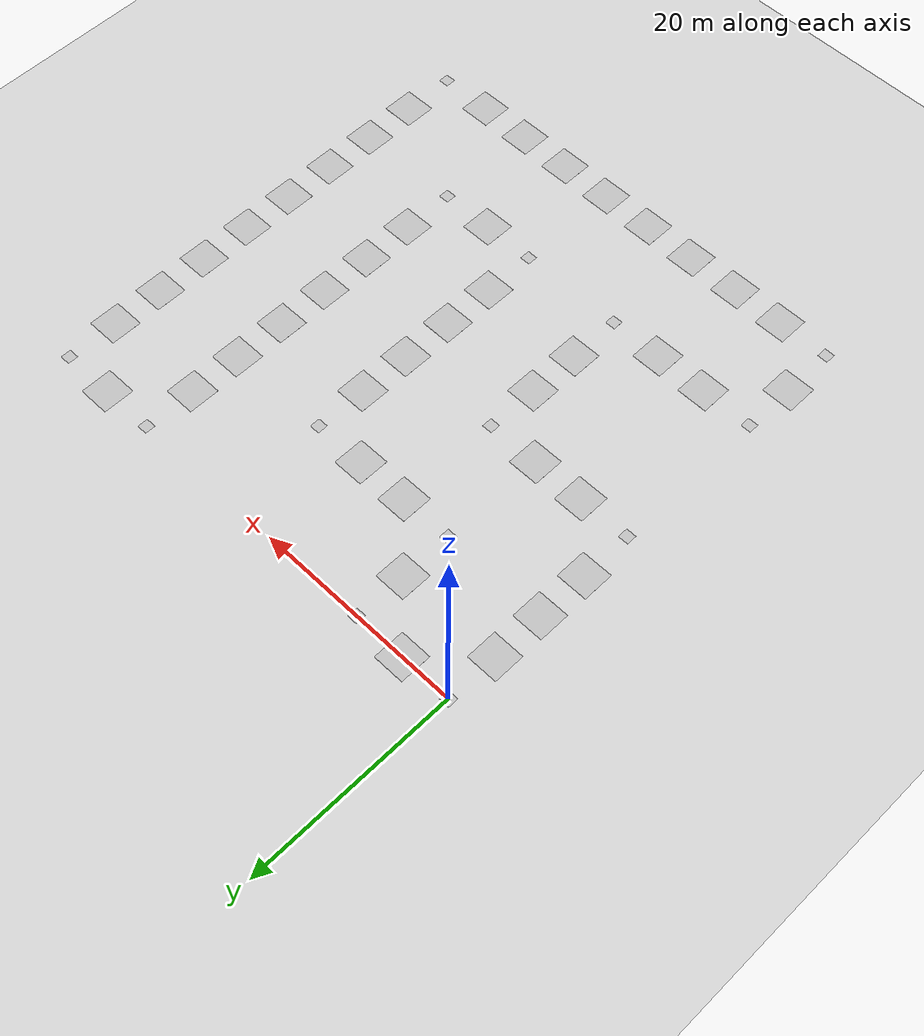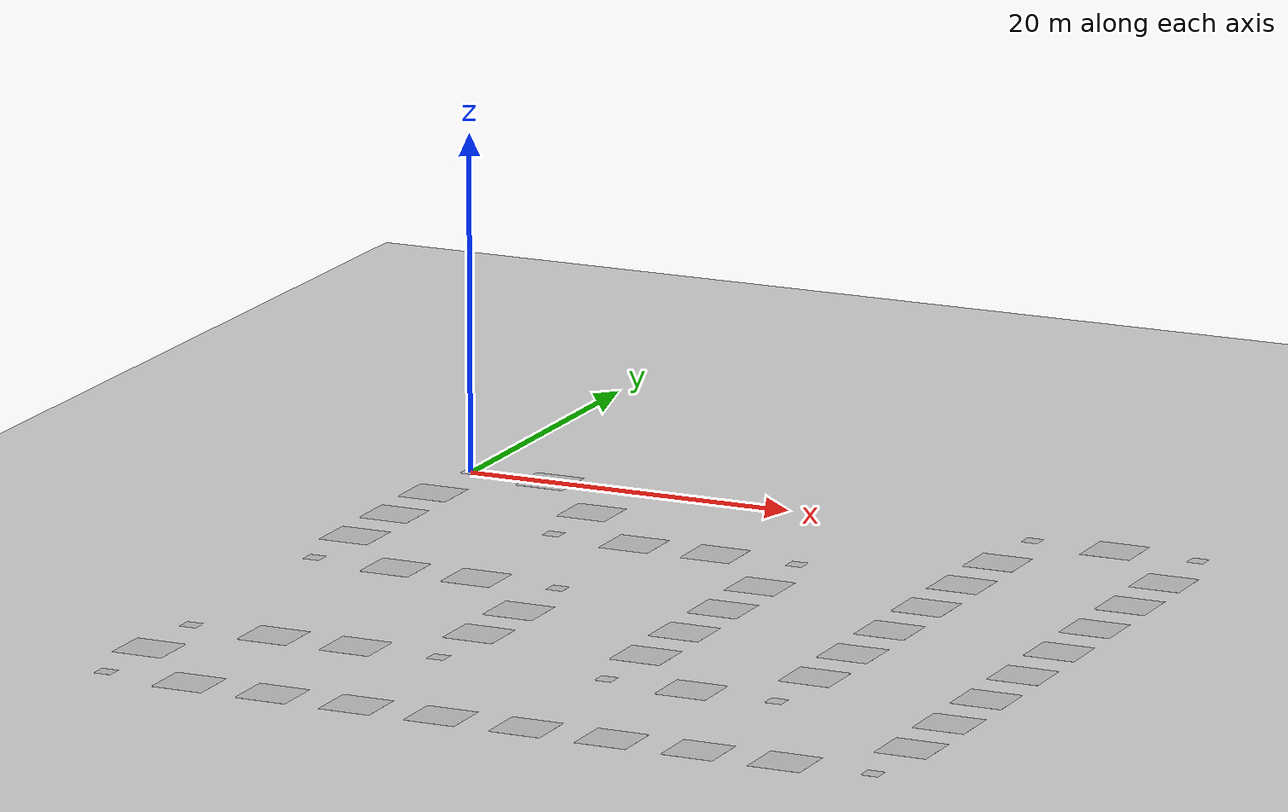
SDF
<?xml version='1.0' encoding='ASCII'?>
<sdf version="1.4">
  <world name="road_test">
    <model name="road_curve_0_0">
      <include>
        <uri>model://road_curve</uri>
      </include>
      <pose>0 0 0.02 0 0 3.14</pose>
    </model>
    <model name="road_straight_5_0">
      <include>
        <uri>model://road_straight</uri>
      </include>
      <pose>5 0 0.02 0 0 0.0</pose>
    </model>
    <model name="road_curve_10_0">
      <include>
        <uri>model://road_curve</uri>
      </include>
      <pose>10 0 0.02 0 0 1.57</pose>
    </model>
    <model name="ground_plane_15_0">
      <include>
        <uri>model://ground_plane</uri>
      </include>
      <pose>15 0 0.0 0 0 0.0</pose>
    </model>
    <model name="ground_plane_20_0">
      <include>
        <uri>model://ground_plane</uri>
      </include>
      <pose>20 0 0.0 0 0 0.0</pose>
    </model>
    <model name="ground_plane_25_0">
      <include>
        <uri>model://ground_plane</uri>
      </include>
      <pose>25 0 0.0 0 0 0.0</pose>
    </model>
    <model name="ground_plane_30_0">
      <include>
        <uri>model://ground_plane</uri>
      </include>
      <pose>30 0 0.0 0 0 0.0</pose>
    </model>
    <model name="road_curve_35_0">
      <include>
        <uri>model://road_curve</uri>
      </include>
      <pose>35 0 0.02 0 0 3.14</pose>
    </model>
    <model name="road_straight_40_0">
      <include>
        <uri>model://road_straight</uri>
      </include>
      <pose>40 0 0.02 0 0 0.0</pose>
    </model>
    <model name="road_curve_45_0">
      <include>
        <uri>model://road_curve</uri>
      </include>
      <pose>45 0 0.02 0 0 1.57</pose>
    </model>
    <model name="road_straight_0_-5">
      <include>
        <uri>model://road_straight</uri>
      </include>
      <pose>0 -5 0.02 0 0 1.57</pose>
    </model>
    <model name="ground_plane_5_-5">
      <include>
        <uri>model://ground_plane</uri>
      </include>
      <pose>5 -5 0.0 0 0 0.0</pose>
    </model>
    <model name="road_straight_10_-5">
      <include>
        <uri>model://road_straight</uri>
      </include>
      <pose>10 -5 0.02 0 0 1.57</pose>
    </model>
    <model name="ground_plane_15_-5">
      <include>
        <uri>model://ground_plane</uri>
      </include>
      <pose>15 -5 0.0 0 0 0.0</pose>
    </model>
    <model name="ground_plane_20_-5">
      <include>
        <uri>model://ground_plane</uri>
      </include>
      <pose>20 -5 0.0 0 0 0.0</pose>
    </model>
    <model name="ground_plane_25_-5">
      <include>
        <uri>model://ground_plane</uri>
      </include>
      <pose>25 -5 0.0 0 0 0.0</pose>
    </model>
    <model name="ground_plane_30_-5">
      <include>
        <uri>model://ground_plane</uri>
      </include>
      <pose>30 -5 0.0 0 0 0.0</pose>
    </model>
    <model name="road_straight_35_-5">
      <include>
        <uri>model://road_straight</uri>
      </include>
      <pose>35 -5 0.02 0 0 1.57</pose>
    </model>
    <model name="ground_plane_40_-5">
      <include>
        <uri>model://ground_plane</uri>
      </include>
      <pose>40 -5 0.0 0 0 0.0</pose>
    </model>
    <model name="road_straight_45_-5">
      <include>
        <uri>model://road_straight</uri>
      </include>
      <pose>45 -5 0.02 0 0 1.57</pose>
    </model>
    <model name="road_straight_0_-10">
      <include>
        <uri>model://road_straight</uri>
      </include>
      <pose>0 -10 0.02 0 0 1.57</pose>
    </model>
    <model name="ground_plane_5_-10">
      <include>
        <uri>model://ground_plane</uri>
      </include>
      <pose>5 -10 0.0 0 0 0.0</pose>
    </model>
    <model name="road_curve_10_-10">
      <include>
        <uri>model://road_curve</uri>
      </include>
      <pose>10 -10 0.02 0 0 -1.57</pose>
    </model>
    <model name="road_straight_15_-10">
      <include>
        <uri>model://road_straight</uri>
      </include>
      <pose>15 -10 0.02 0 0 0.0</pose>
    </model>
    <model name="road_straight_20_-10">
      <include>
        <uri>model://road_straight</uri>
      </include>
      <pose>20 -10 0.02 0 0 0.0</pose>
    </model>
    <model name="road_curve_25_-10">
      <include>
        <uri>model://road_curve</uri>
      </include>
      <pose>25 -10 0.02 0 0 1.57</pose>
    </model>
    <model name="ground_plane_30_-10">
      <include>
        <uri>model://ground_plane</uri>
      </include>
      <pose>30 -10 0.0 0 0 0.0</pose>
    </model>
    <model name="road_straight_35_-10">
      <include>
        <uri>model://road_straight</uri>
      </include>
      <pose>35 -10 0.02 0 0 1.57</pose>
    </model>
    <model name="ground_plane_40_-10">
      <include>
        <uri>model://ground_plane</uri>
      </include>
      <pose>40 -10 0.0 0 0 0.0</pose>
    </model>
    <model name="road_straight_45_-10">
      <include>
        <uri>model://road_straight</uri>
      </include>
      <pose>45 -10 0.02 0 0 1.57</pose>
    </model>
    <model name="road_straight_0_-15">
      <include>
        <uri>model://road_straight</uri>
      </include>
      <pose>0 -15 0.02 0 0 1.57</pose>
    </model>
    <model name="ground_plane_5_-15">
      <include>
        <uri>model://ground_plane</uri>
      </include>
      <pose>5 -15 0.0 0 0 0.0</pose>
    </model>
    <model name="ground_plane_10_-15">
      <include>
        <uri>model://ground_plane</uri>
      </include>
      <pose>10 -15 0.0 0 0 0.0</pose>
    </model>
    <model name="ground_plane_15_-15">
      <include>
        <uri>model://ground_plane</uri>
      </include>
      <pose>15 -15 0.0 0 0 0.0</pose>
    </model>
    <model name="ground_plane_20_-15">
      <include>
        <uri>model://ground_plane</uri>
      </include>
      <pose>20 -15 0.0 0 0 0.0</pose>
    </model>
    <model name="road_straight_25_-15">
      <include>
        <uri>model://road_straight</uri>
      </include>
      <pose>25 -15 0.02 0 0 1.57</pose>
    </model>
    <model name="ground_plane_30_-15">
      <include>
        <uri>model://ground_plane</uri>
      </include>
      <pose>30 -15 0.0 0 0 0.0</pose>
    </model>
    <model name="road_straight_35_-15">
      <include>
        <uri>model://road_straight</uri>
      </include>
      <pose>35 -15 0.02 0 0 1.57</pose>
    </model>
    <model name="ground_plane_40_-15">
      <include>
        <uri>model://ground_plane</uri>
      </include>
      <pose>40 -15 0.0 0 0 0.0</pose>
    </model>
    <model name="road_straight_45_-15">
      <include>
        <uri>model://road_straight</uri>
      </include>
      <pose>45 -15 0.02 0 0 1.57</pose>
    </model>
    <model name="road_curve_0_-20">
      <include>
        <uri>model://road_curve</uri>
      </include>
      <pose>0 -20 0.02 0 0 -1.57</pose>
    </model>
    <model name="road_straight_5_-20">
      <include>
        <uri>model://road_straight</uri>
      </include>
      <pose>5 -20 0.02 0 0 0.0</pose>
    </model>
    <model name="road_straight_10_-20">
      <include>
        <uri>model://road_straight</uri>
      </include>
      <pose>10 -20 0.02 0 0 0.0</pose>
    </model>
    <model name="road_curve_15_-20">
      <include>
        <uri>model://road_curve</uri>
      </include>
      <pose>15 -20 0.02 0 0 1.57</pose>
    </model>
    <model name="ground_plane_20_-20">
      <include>
        <uri>model://ground_plane</uri>
      </include>
      <pose>20 -20 0.0 0 0 0.0</pose>
    </model>
    <model name="road_straight_25_-20">
      <include>
        <uri>model://road_straight</uri>
      </include>
      <pose>25 -20 0.02 0 0 1.57</pose>
    </model>
    <model name="ground_plane_30_-20">
      <include>
        <uri>model://ground_plane</uri>
      </include>
      <pose>30 -20 0.0 0 0 0.0</pose>
    </model>
    <model name="road_straight_35_-20">
      <include>
        <uri>model://road_straight</uri>
      </include>
      <pose>35 -20 0.02 0 0 1.57</pose>
    </model>
    <model name="ground_plane_40_-20">
      <include>
        <uri>model://ground_plane</uri>
      </include>
      <pose>40 -20 0.0 0 0 0.0</pose>
    </model>
    <model name="road_straight_45_-20">
      <include>
        <uri>model://road_straight</uri>
      </include>
      <pose>45 -20 0.02 0 0 1.57</pose>
    </model>
    <model name="ground_plane_0_-25">
      <include>
        <uri>model://ground_plane</uri>
      </include>
      <pose>0 -25 0.0 0 0 0.0</pose>
    </model>
    <model name="ground_plane_5_-25">
      <include>
        <uri>model://ground_plane</uri>
      </include>
      <pose>5 -25 0.0 0 0 0.0</pose>
    </model>
    <model name="ground_plane_10_-25">
      <include>
        <uri>model://ground_plane</uri>
      </include>
      <pose>10 -25 0.0 0 0 0.0</pose>
    </model>
    <model name="road_straight_15_-25">
      <include>
        <uri>model://road_straight</uri>
      </include>
      <pose>15 -25 0.02 0 0 1.57</pose>
    </model>
    <model name="ground_plane_20_-25">
      <include>
        <uri>model://ground_plane</uri>
      </include>
      <pose>20 -25 0.0 0 0 0.0</pose>
    </model>
    <model name="road_straight_25_-25">
      <include>
        <uri>model://road_straight</uri>
      </include>
      <pose>25 -25 0.02 0 0 1.57</pose>
    </model>
    <model name="ground_plane_30_-25">
      <include>
        <uri>model://ground_plane</uri>
      </include>
      <pose>30 -25 0.0 0 0 0.0</pose>
    </model>
    <model name="road_straight_35_-25">
      <include>
        <uri>model://road_straight</uri>
      </include>
      <pose>35 -25 0.02 0 0 1.57</pose>
    </model>
    <model name="ground_plane_40_-25">
      <include>
        <uri>model://ground_plane</uri>
      </include>
      <pose>40 -25 0.0 0 0 0.0</pose>
    </model>
    <model name="road_straight_45_-25">
      <include>
        <uri>model://road_straight</uri>
      </include>
      <pose>45 -25 0.02 0 0 1.57</pose>
    </model>
    <model name="ground_plane_0_-30">
      <include>
        <uri>model://ground_plane</uri>
      </include>
      <pose>0 -30 0.0 0 0 0.0</pose>
    </model>
    <model name="ground_plane_5_-30">
      <include>
        <uri>model://ground_plane</uri>
      </include>
      <pose>5 -30 0.0 0 0 0.0</pose>
    </model>
    <model name="ground_plane_10_-30">
      <include>
        <uri>model://ground_plane</uri>
      </include>
      <pose>10 -30 0.0 0 0 0.0</pose>
    </model>
    <model name="road_straight_15_-30">
      <include>
        <uri>model://road_straight</uri>
      </include>
      <pose>15 -30 0.02 0 0 1.57</pose>
    </model>
    <model name="ground_plane_20_-30">
      <include>
        <uri>model://ground_plane</uri>
      </include>
      <pose>20 -30 0.0 0 0 0.0</pose>
    </model>
    <model name="road_straight_25_-30">
      <include>
        <uri>model://road_straight</uri>
      </include>
      <pose>25 -30 0.02 0 0 1.57</pose>
    </model>
    <model name="ground_plane_30_-30">
      <include>
        <uri>model://ground_plane</uri>
      </include>
      <pose>30 -30 0.0 0 0 0.0</pose>
    </model>
    <model name="road_straight_35_-30">
      <include>
        <uri>model://road_straight</uri>
      </include>
      <pose>35 -30 0.02 0 0 1.57</pose>
    </model>
    <model name="ground_plane_40_-30">
      <include>
        <uri>model://ground_plane</uri>
      </include>
      <pose>40 -30 0.0 0 0 0.0</pose>
    </model>
    <model name="road_straight_45_-30">
      <include>
        <uri>model://road_straight</uri>
      </include>
      <pose>45 -30 0.02 0 0 1.57</pose>
    </model>
    <model name="road_curve_0_-35">
      <include>
        <uri>model://road_curve</uri>
      </include>
      <pose>0 -35 0.02 0 0 3.14</pose>
    </model>
    <model name="road_straight_5_-35">
      <include>
        <uri>model://road_straight</uri>
      </include>
      <pose>5 -35 0.02 0 0 0.0</pose>
    </model>
    <model name="road_straight_10_-35">
      <include>
        <uri>model://road_straight</uri>
      </include>
      <pose>10 -35 0.02 0 0 0.0</pose>
    </model>
    <model name="road_curve_15_-35">
      <include>
        <uri>model://road_curve</uri>
      </include>
      <pose>15 -35 0.02 0 0 0.0</pose>
    </model>
    <model name="ground_plane_20_-35">
      <include>
        <uri>model://ground_plane</uri>
      </include>
      <pose>20 -35 0.0 0 0 0.0</pose>
    </model>
    <model name="road_curve_25_-35">
      <include>
        <uri>model://road_curve</uri>
      </include>
      <pose>25 -35 0.02 0 0 -1.57</pose>
    </model>
    <model name="road_straight_30_-35">
      <include>
        <uri>model://road_straight</uri>
      </include>
      <pose>30 -35 0.02 0 0 0.0</pose>
    </model>
    <model name="road_curve_35_-35">
      <include>
        <uri>model://road_curve</uri>
      </include>
      <pose>35 -35 0.02 0 0 0.0</pose>
    </model>
    <model name="ground_plane_40_-35">
      <include>
        <uri>model://ground_plane</uri>
      </include>
      <pose>40 -35 0.0 0 0 0.0</pose>
    </model>
    <model name="road_straight_45_-35">
      <include>
        <uri>model://road_straight</uri>
      </include>
      <pose>45 -35 0.02 0 0 1.57</pose>
    </model>
    <model name="road_straight_0_-40">
      <include>
        <uri>model://road_straight</uri>
      </include>
      <pose>0 -40 0.02 0 0 1.57</pose>
    </model>
    <model name="ground_plane_5_-40">
      <include>
        <uri>model://ground_plane</uri>
      </include>
      <pose>5 -40 0.0 0 0 0.0</pose>
    </model>
    <model name="ground_plane_10_-40">
      <include>
        <uri>model://ground_plane</uri>
      </include>
      <pose>10 -40 0.0 0 0 0.0</pose>
    </model>
    <model name="ground_plane_15_-40">
      <include>
        <uri>model://ground_plane</uri>
      </include>
      <pose>15 -40 0.0 0 0 0.0</pose>
    </model>
    <model name="ground_plane_20_-40">
      <include>
        <uri>model://ground_plane</uri>
      </include>
      <pose>20 -40 0.0 0 0 0.0</pose>
    </model>
    <model name="ground_plane_25_-40">
      <include>
        <uri>model://ground_plane</uri>
      </include>
      <pose>25 -40 0.0 0 0 0.0</pose>
    </model>
    <model name="ground_plane_30_-40">
      <include>
        <uri>model://ground_plane</uri>
      </include>
      <pose>30 -40 0.0 0 0 0.0</pose>
    </model>
    <model name="ground_plane_35_-40">
      <include>
        <uri>model://ground_plane</uri>
      </include>
      <pose>35 -40 0.0 0 0 0.0</pose>
    </model>
    <model name="ground_plane_40_-40">
      <include>
        <uri>model://ground_plane</uri>
      </include>
      <pose>40 -40 0.0 0 0 0.0</pose>
    </model>
    <model name="road_straight_45_-40">
      <include>
        <uri>model://road_straight</uri>
      </include>
      <pose>45 -40 0.02 0 0 1.57</pose>
    </model>
    <model name="road_curve_0_-45">
      <include>
        <uri>model://road_curve</uri>
      </include>
      <pose>0 -45 0.02 0 0 -1.57</pose>
    </model>
    <model name="road_straight_5_-45">
      <include>
        <uri>model://road_straight</uri>
      </include>
      <pose>5 -45 0.02 0 0 0.0</pose>
    </model>
    <model name="road_straight_10_-45">
      <include>
        <uri>model://road_straight</uri>
      </include>
      <pose>10 -45 0.02 0 0 0.0</pose>
    </model>
    <model name="road_straight_15_-45">
      <include>
        <uri>model://road_straight</uri>
      </include>
      <pose>15 -45 0.02 0 0 0.0</pose>
    </model>
    <model name="road_straight_20_-45">
      <include>
        <uri>model://road_straight</uri>
      </include>
      <pose>20 -45 0.02 0 0 0.0</pose>
    </model>
    <model name="road_straight_25_-45">
      <include>
        <uri>model://road_straight</uri>
      </include>
      <pose>25 -45 0.02 0 0 0.0</pose>
    </model>
    <model name="road_straight_30_-45">
      <include>
        <uri>model://road_straight</uri>
      </include>
      <pose>30 -45 0.02 0 0 0.0</pose>
    </model>
    <model name="road_straight_35_-45">
      <include>
        <uri>model://road_straight</uri>
      </include>
      <pose>35 -45 0.02 0 0 0.0</pose>
    </model>
    <model name="road_straight_40_-45">
      <include>
        <uri>model://road_straight</uri>
      </include>
      <pose>40 -45 0.02 0 0 0.0</pose>
    </model>
    <model name="road_curve_45_-45">
      <include>
        <uri>model://road_curve</uri>
      </include>
      <pose>45 -45 0.02 0 0 0.0</pose>
    </model>
    <include name="sun">
      <uri>model://sun</uri>
    </include>
  </world>
</sdf>

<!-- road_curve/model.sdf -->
<sdf version="1.4">
<model name="road_curve">
  <static>true</static>
    <link name="link">
      <collision name="collision">
        <geometry>
          <plane>
            <normal>0 0 1</normal>
            <size>1 1</size>
          </plane>
        </geometry>
        <surface>
          <friction>
            <ode>
              <mu>75</mu>
              <mu2>75</mu2>
            </ode>
          </friction>
        </surface>
      </collision>
      <visual name="visual">
        <cast_shadows>false</cast_shadows>
        <geometry>
          <plane>
            <normal>0 0 1</normal>
            <size>1 1</size>
          </plane>
        </geometry>
        <material>
          <script>
            <uri>model://road_curve/materials/scripts</uri>
            <uri>model://road_curve/materials/textures</uri>
            <name>road_curve/Image</name>
          </script>
        </material>
      </visual>
    </link>
  </model>
</sdf>

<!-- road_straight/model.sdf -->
<sdf version="1.4">
<model name="road_straight">
  <static>true</static>
    <link name="link">
      <collision name="collision">
        <geometry>
          <plane>
            <normal>0 0 1</normal>
            <size>3 3</size>
          </plane>
        </geometry>
        <surface>
          <friction>
            <ode>
              <mu>75</mu>
              <mu2>75</mu2>
            </ode>
          </friction>
        </surface>
      </collision>
      <visual name="visual">
        <cast_shadows>false</cast_shadows>
        <geometry>
          <plane>
            <normal>0 0 1</normal>
            <size>3 3</size>
          </plane>
        </geometry>
        <material>
          <script>
            <uri>model://road_straight/materials/scripts</uri>
            <uri>model://road_straight/materials/textures</uri>
            <name>road_straight/Image</name>
          </script>
        </material>
      </visual>
    </link>
  </model>
</sdf>
